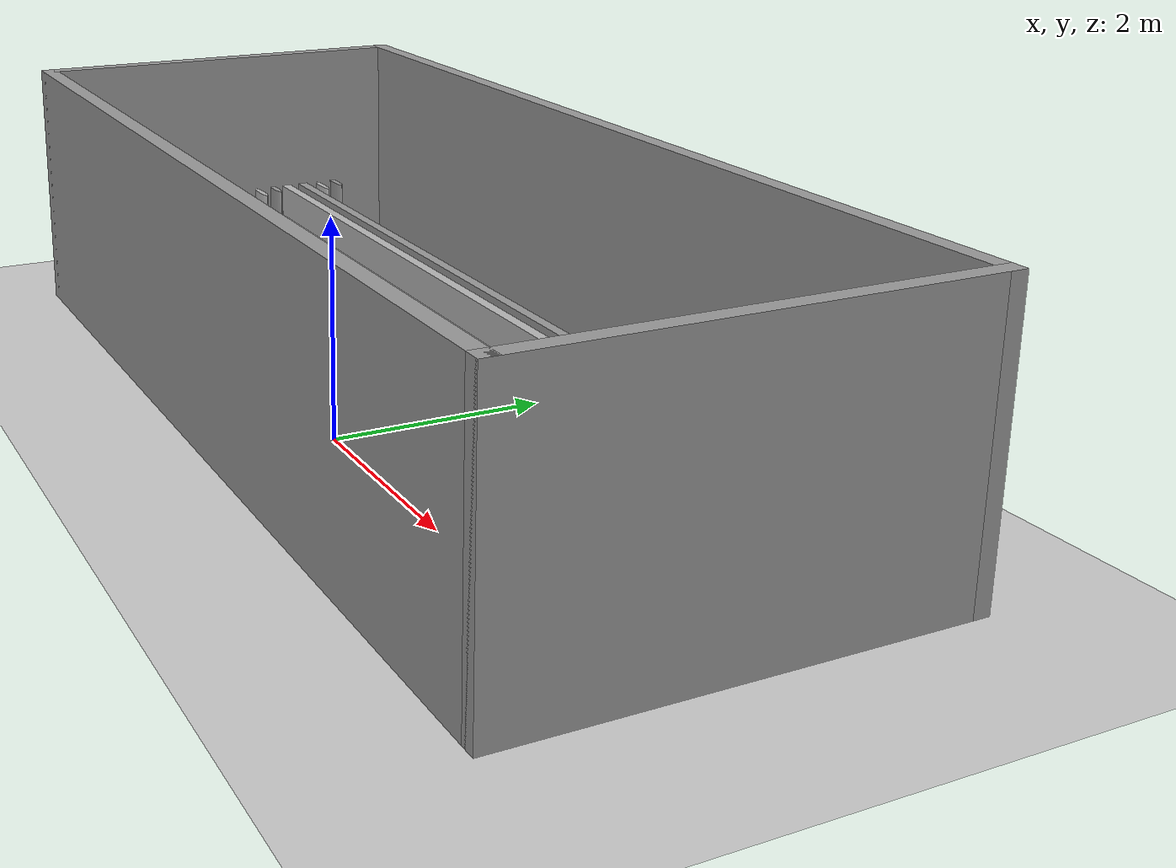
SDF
<sdf version="1.7">
 <world name="default">
  <model name="ground_plane">
   <static>1</static>
   <link name="link">
    <collision name="collision">
     <geometry><plane><normal>0 0 1</normal><size>100 100</size></plane></geometry>
     <surface><friction><ode><mu>100</mu><mu2>50</mu2></ode></friction></surface>
    </collision>
    <visual name="visual">
     <cast_shadows>0</cast_shadows>
     <geometry><plane><normal>0 0 1</normal><size>100 100</size></plane></geometry>
     <material>
      <script><uri>file://media/materials/scripts/gazebo.material</uri><name>Gazebo/Grey</name></script>
     </material>
    </visual>
   </link>
  </model>
  <light name="sun" type="directional">
   <pose>0 0 10 0 -0 0</pose>
   <diffuse>0.8 0.8 0.8 1</diffuse>
   <specular>0.2 0.2 0.2 1</specular>
   <attenuation>
    <range>1000</range>
    <constant>0.9</constant>
    <linear>0.01</linear>
    <quadratic>0.001</quadratic>
   </attenuation>
   <direction>-0.5 0.1 -0.9</direction>
   <spot><inner_angle>0</inner_angle><outer_angle>0</outer_angle><falloff>0</falloff></spot>
  </light>
  <model name="my_mesh">
   <pose>-0.390857 0.01507 0 0 -0 0</pose>
   <static>1</static>
   <link name="body">
    <visual name="visual"><geometry><mesh><uri>file://shelf.dae</uri></mesh></geometry></visual>
   </link>
  </model>
  <gravity>0 0 -9.8</gravity>
  <magnetic_field>6e-06 2.3e-05 -4.2e-05</magnetic_field>
  <atmosphere type="adiabatic"/>
  <physics type="ode">
   <max_step_size>0.001</max_step_size>
   <real_time_factor>1</real_time_factor>
   <real_time_update_rate>1000</real_time_update_rate>
  </physics>
  <scene><ambient>0.4 0.4 0.4 1</ambient><background>0.7 0.7 0.7 1</background><shadows>1</shadows></scene>
  <audio><device>default</device></audio>
  <spherical_coordinates>
   <surface_model>EARTH_WGS84</surface_model>
   <latitude_deg>0</latitude_deg>
   <longitude_deg>0</longitude_deg>
   <elevation>0</elevation>
   <heading_deg>0</heading_deg>
  </spherical_coordinates>
  <model name="Stall4x10">
   <pose>1.16004 0.83872 0 0 -0 0</pose>
   <link name="Wall_6">
    <collision name="Wall_6_Collision">
     <geometry><box><size>4 0.15 2.5</size></box></geometry>
     <pose>0 0 1.25 0 -0 0</pose>
    </collision>
    <visual name="Wall_6_Visual">
     <pose>0 0 1.25 0 -0 0</pose>
     <geometry><box><size>4 0.15 2.5</size></box></geometry>
     <material>
      <script><uri>file://media/materials/scripts/gazebo.material</uri><name>Gazebo/Grey</name></script>
      <ambient>1 1 1 1</ambient>
     </material>
     <meta><layer>0</layer></meta>
    </visual>
    <pose>-6.2376 -0 0 0 -0 -1.5708</pose>
   </link>
   <link name="Wall_7">
    <collision name="Wall_7_Collision">
     <geometry><box><size>10 0.15 2.5</size></box></geometry>
     <pose>0 0 1.25 0 -0 0</pose>
    </collision>
    <visual name="Wall_7_Visual">
     <pose>0 0 1.25 0 -0 0</pose>
     <geometry><box><size>10 0.15 2.5</size></box></geometry>
     <material>
      <script><uri>file://media/materials/scripts/gazebo.material</uri><name>Gazebo/Grey</name></script>
      <ambient>1 1 1 1</ambient>
     </material>
     <meta><layer>0</layer></meta>
    </visual>
    <pose>-1.3126 -1.925 0 0 -0 0</pose>
   </link>
   <link name="Wall_8">
    <collision name="Wall_8_Collision">
     <geometry><box><size>4 0.15 2.5</size></box></geometry>
     <pose>0 0 1.25 0 -0 0</pose>
    </collision>
    <visual name="Wall_8_Visual">
     <pose>0 0 1.25 0 -0 0</pose>
     <geometry><box><size>4 0.15 2.5</size></box></geometry>
     <material>
      <script><uri>file://media/materials/scripts/gazebo.material</uri><name>Gazebo/Grey</name></script>
      <ambient>1 1 1 1</ambient>
     </material>
     <meta><layer>0</layer></meta>
    </visual>
    <pose>3.6124 -0 0 0 -0 1.5708</pose>
   </link>
   <link name="Wall_9">
    <collision name="Wall_9_Collision">
     <geometry><box><size>10 0.15 2.5</size></box></geometry>
     <pose>0 0 1.25 0 -0 0</pose>
    </collision>
    <visual name="Wall_9_Visual">
     <pose>0 0 1.25 0 -0 0</pose>
     <geometry><box><size>10 0.15 2.5</size></box></geometry>
     <material>
      <script><uri>file://media/materials/scripts/gazebo.material</uri><name>Gazebo/Grey</name></script>
      <ambient>1 1 1 1</ambient>
     </material>
     <meta><layer>0</layer></meta>
    </visual>
    <pose>-1.3126 1.925 0 0 -0 3.14159</pose>
   </link>
   <static>1</static>
  </model>
  <model name="my_mesh_clone">
   <pose>-0.392322 1.52308 0 0 -0 0</pose>
   <static>1</static>
   <link name="body">
    <visual name="visual"><geometry><mesh><uri>file://shelf.dae</uri></mesh></geometry></visual>
   </link>
  </model>
  <model name="shelf.dae">
   <link name="link_1">
    <inertial>
     <mass>1</mass>
     <inertia>
      <ixx>0.166667</ixx>
      <ixy>0</ixy>
      <ixz>0</ixz>
      <iyy>0.166667</iyy>
      <iyz>0</iyz>
      <izz>0.166667</izz>
     </inertia>
    </inertial>
    <pose>0.057608 -0.782623 0 0 -0 0</pose>
    <visual name="visual">
     <geometry>
      <mesh>
       <uri>/workspaces/workspace/install/virtual_maize_field/share/virtual_maize_field/worlds/shelf.dae</uri>
       <scale>1 1 1</scale>
      </mesh>
     </geometry>
     <material>
      <lighting>1</lighting>
      <script><uri>file://media/materials/scripts/gazebo.material</uri><name>Gazebo/Grey</name></script>
      <shader type="pixel"/>
     </material>
    </visual>
    <collision name="collision">
     <geometry>
      <mesh>
       <uri>/workspaces/workspace/install/virtual_maize_field/share/virtual_maize_field/worlds/shelf.dae</uri>
       <scale>1 1 1</scale>
      </mesh>
     </geometry>
     <surface>
      <friction>
       <ode><mu>1</mu><mu2>1</mu2><fdir1>0 0 0</fdir1><slip1>0</slip1><slip2>0</slip2></ode>
       <torsional>
        <coefficient>1</coefficient>
        <patch_radius>0</patch_radius>
        <surface_radius>0</surface_radius>
        <use_patch_radius>1</use_patch_radius>
        <ode><slip>0</slip></ode>
       </torsional>
      </friction>
      <bounce><restitution_coefficient>0</restitution_coefficient><threshold>1e+06</threshold></bounce>
      <contact>
       <collide_without_contact>0</collide_without_contact>
       <collide_without_contact_bitmask>1</collide_without_contact_bitmask>
       <collide_bitmask>1</collide_bitmask>
       <ode>
        <soft_cfm>0</soft_cfm>
        <soft_erp>0.2</soft_erp>
        <kp>1e+13</kp>
        <kd>1</kd>
        <max_vel>0.01</max_vel>
        <min_depth>0</min_depth>
       </ode>
       <bullet>
        <split_impulse>1</split_impulse>
        <split_impulse_penetration_threshold>-0.01</split_impulse_penetration_threshold>
        <soft_cfm>0</soft_cfm>
        <soft_erp>0.2</soft_erp>
        <kp>1e+13</kp>
        <kd>1</kd>
       </bullet>
      </contact>
     </surface>
    </collision>
   </link>
   <link name="link_2">
    <inertial>
     <mass>1</mass>
     <inertia>
      <ixx>0.166667</ixx>
      <ixy>0</ixy>
      <ixz>0</ixz>
      <iyy>0.166667</iyy>
      <iyz>0</iyz>
      <izz>0.166667</izz>
     </inertia>
    </inertial>
    <pose>-0.057608 0.78262 0 0 -0 0</pose>
    <visual name="visual">
     <geometry>
      <mesh>
       <uri>/workspaces/workspace/install/virtual_maize_field/share/virtual_maize_field/worlds/shelf.dae</uri>
       <scale>1 1 1</scale>
      </mesh>
     </geometry>
     <material>
      <lighting>1</lighting>
      <script><uri>file://media/materials/scripts/gazebo.material</uri><name>Gazebo/Grey</name></script>
      <shader type="pixel"/>
     </material>
    </visual>
    <collision name="collision">
     <geometry>
      <mesh>
       <uri>/workspaces/workspace/install/virtual_maize_field/share/virtual_maize_field/worlds/shelf.dae</uri>
       <scale>1 1 1</scale>
      </mesh>
     </geometry>
     <surface>
      <friction>
       <ode><mu>1</mu><mu2>1</mu2><fdir1>0 0 0</fdir1><slip1>0</slip1><slip2>0</slip2></ode>
       <torsional>
        <coefficient>1</coefficient>
        <patch_radius>0</patch_radius>
        <surface_radius>0</surface_radius>
        <use_patch_radius>1</use_patch_radius>
        <ode><slip>0</slip></ode>
       </torsional>
      </friction>
      <bounce><restitution_coefficient>0</restitution_coefficient><threshold>1e+06</threshold></bounce>
      <contact>
       <collide_without_contact>0</collide_without_contact>
       <collide_without_contact_bitmask>1</collide_without_contact_bitmask>
       <collide_bitmask>1</collide_bitmask>
       <ode>
        <soft_cfm>0</soft_cfm>
        <soft_erp>0.2</soft_erp>
        <kp>1e+13</kp>
        <kd>1</kd>
        <max_vel>0.01</max_vel>
        <min_depth>0</min_depth>
       </ode>
       <bullet>
        <split_impulse>1</split_impulse>
        <split_impulse_penetration_threshold>-0.01</split_impulse_penetration_threshold>
        <soft_cfm>0</soft_cfm>
        <soft_erp>0.2</soft_erp>
        <kp>1e+13</kp>
        <kd>1</kd>
       </bullet>
      </contact>
     </surface>
    </collision>
   </link>
   <static>0</static>
   <pose>-0.424451 0.9425 0 0 -0 0</pose>
  </model>
  <model name="shelf_colustion">
   <pose>-0.470731 1.0291 0 0 -0 0</pose>
   <link name="Wall_0">
    <collision name="Wall_0_Collision">
     <geometry><box><size>9.2 0.4 0.3</size></box></geometry>
     <pose>0 0 0.15 0 -0 0</pose>
    </collision>
    <visual name="Wall_0_Visual">
     <pose>0 0 0.15 0 -0 0</pose>
     <geometry><box><size>9.2 0.4 0.3</size></box></geometry>
     <material>
      <script><uri>file://media/materials/scripts/gazebo.material</uri><name>Gazebo/Grey</name></script>
      <ambient>1 1 1 1</ambient>
     </material>
     <meta><layer>0</layer></meta>
    </visual>
    <pose>-0.008566 -0.836269 0 0 -0 3.14159</pose>
   </link>
   <link name="Wall_2">
    <collision name="Wall_2_Collision">
     <geometry><box><size>9.2 0.4 0.3</size></box></geometry>
     <pose>0 0 0.15 0 -0 0</pose>
    </collision>
    <visual name="Wall_2_Visual">
     <pose>0 0 0.15 0 -0 0</pose>
     <geometry><box><size>9.2 0.4 0.3</size></box></geometry>
     <material>
      <script><uri>file://media/materials/scripts/gazebo.material</uri><name>Gazebo/Grey</name></script>
      <ambient>1 1 1 1</ambient>
     </material>
     <meta><layer>0</layer></meta>
    </visual>
    <pose>0.008566 0.836269 0 0 -0 3.14159</pose>
   </link>
   <static>1</static>
  </model>
 </world>
</sdf>
